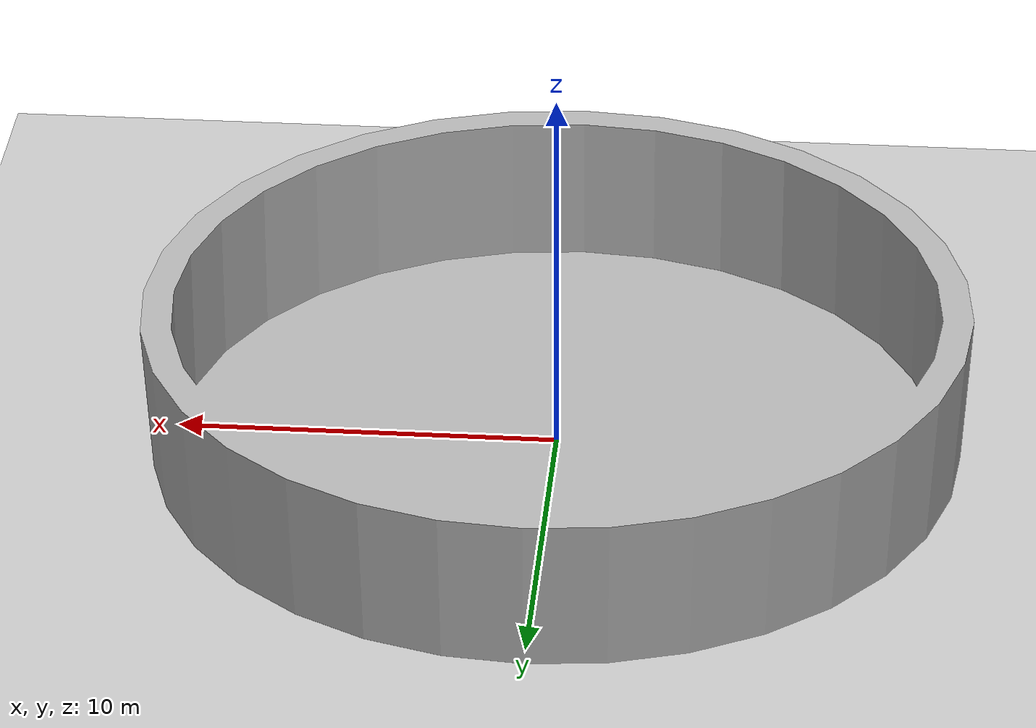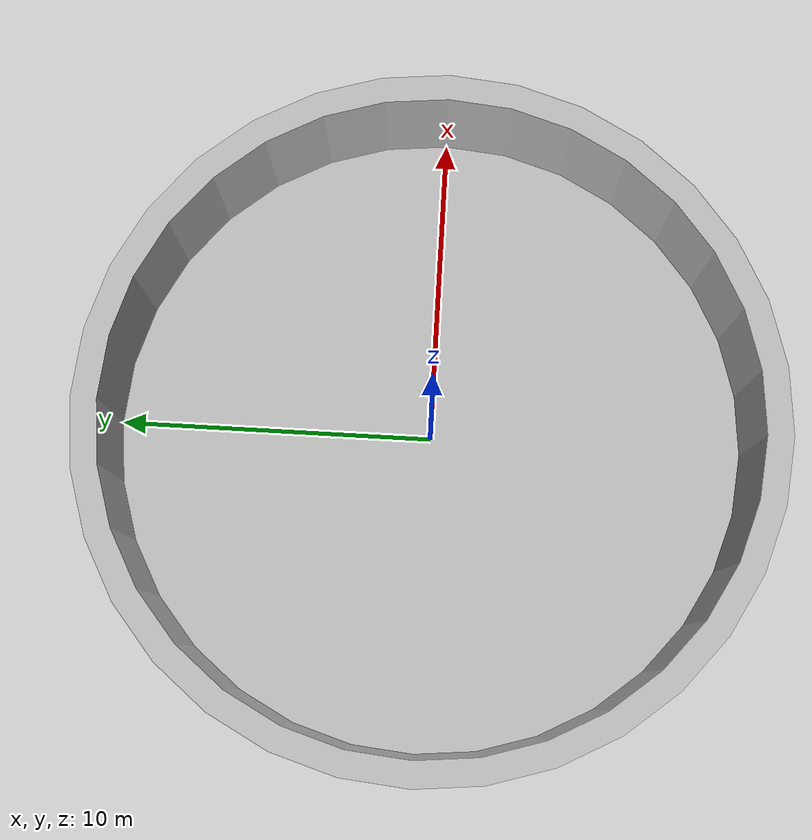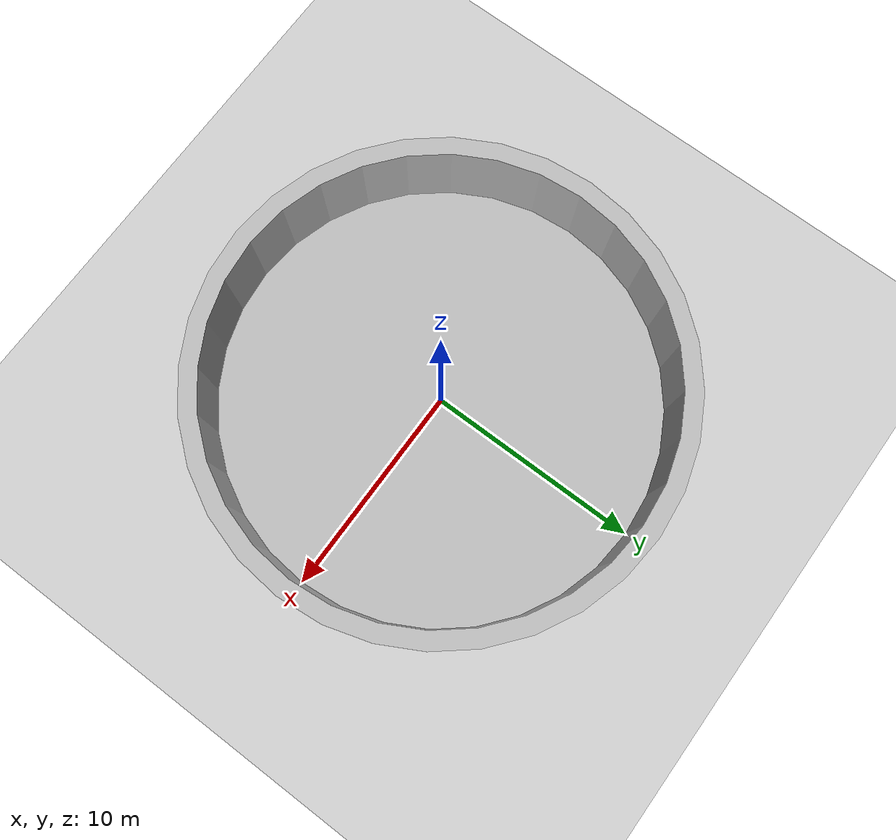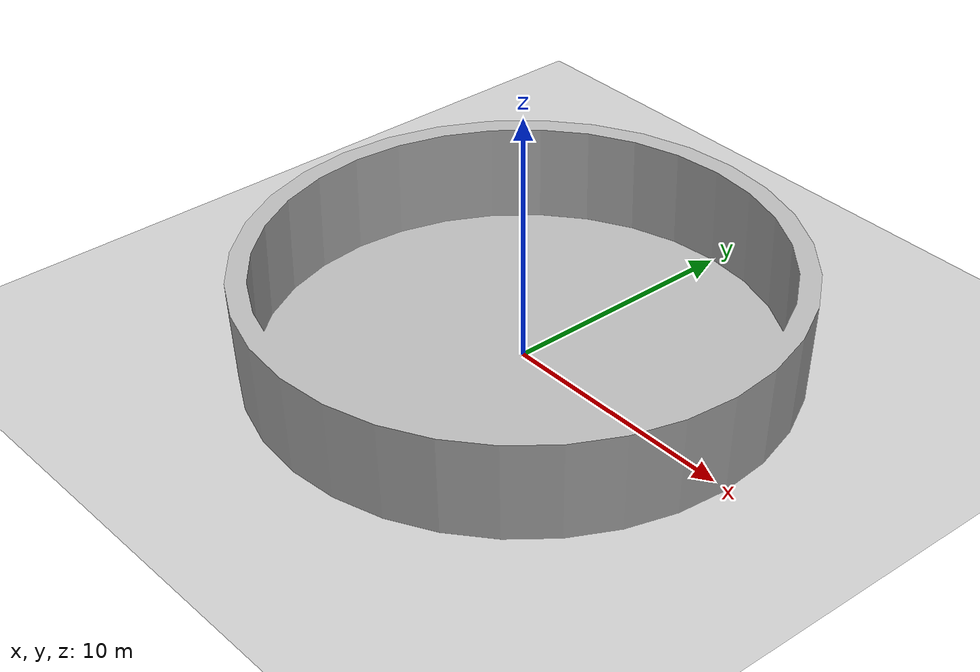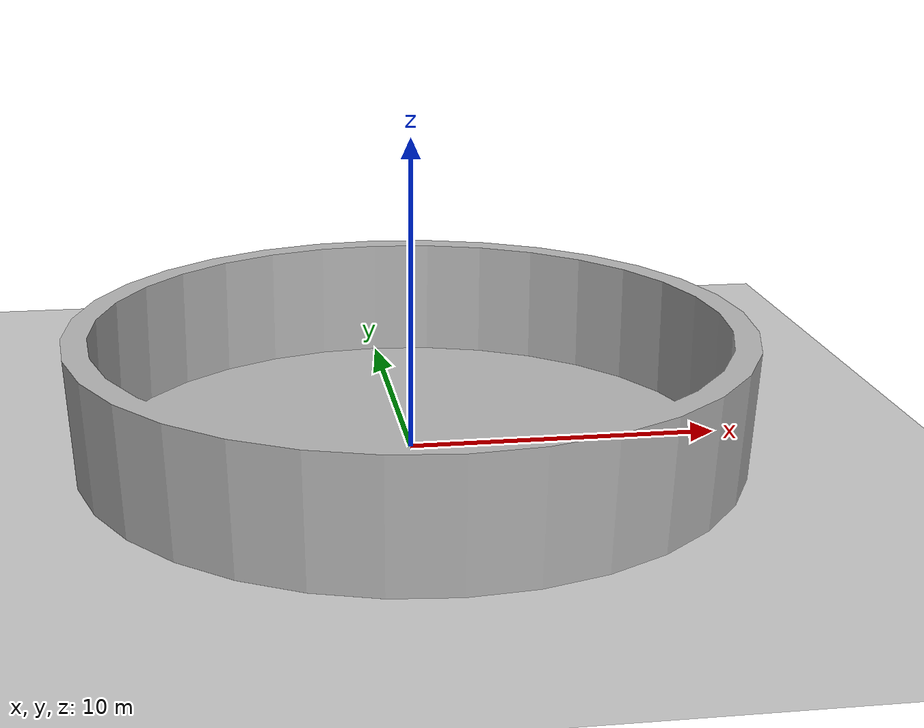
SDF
<?xml version="1.0" ?>
<sdf version="1.5">
  <world name="default">
    <!-- A global light source -->
    <include>
      <uri>model://sun</uri>
    </include>
    <!-- A ground plane -->
    <include>
      <uri>model://ground_plane</uri>
    </include>
     <include>
      <uri>model://ring_wall</uri>
    </include>
  </world>
</sdf>

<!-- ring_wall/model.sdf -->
<sdf version="1.5">
  <model name="ring_wall">
    <static>true</static>
    <link name="link">
      <collision name="surface">
        <pose>0 0 2.05 0 0 0</pose>
        <geometry>
          <mesh>
          <uri>model://ring_wall/meshes/ring_wall.obj</uri>
           <scale>0.1 0.1 0.1</scale>
          </mesh>
        </geometry>
      </collision>

      <visual name="visual">
        <pose>0 0 2.05 0 0 0</pose>
        <geometry>
          <mesh>
            <uri>model://ring_wall/meshes/ring_wall.obj</uri>
             <scale>0.1 0.1 0.1</scale>
          </mesh>
        </geometry>
      </visual>
    </link>
  </model>
</sdf>
